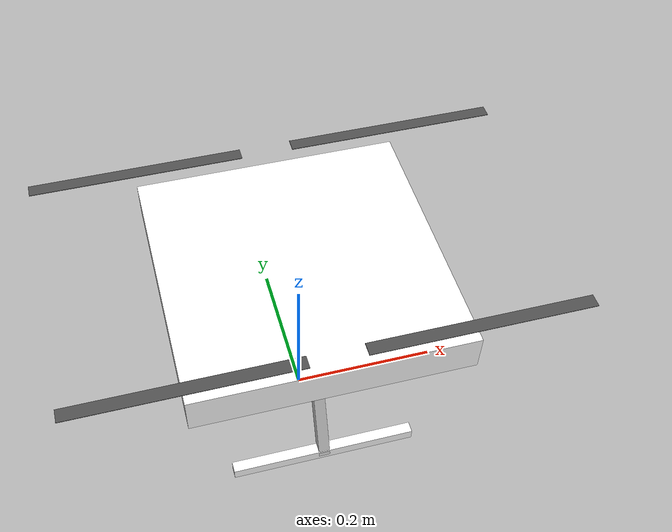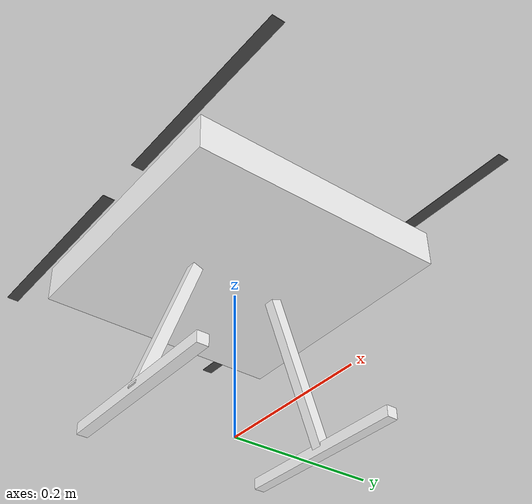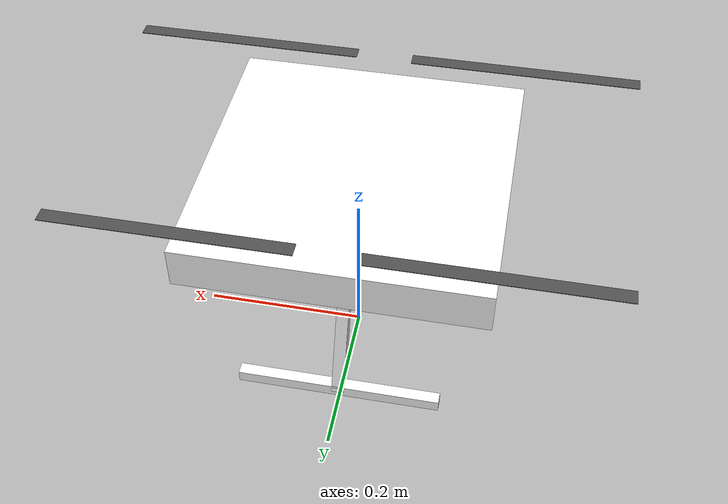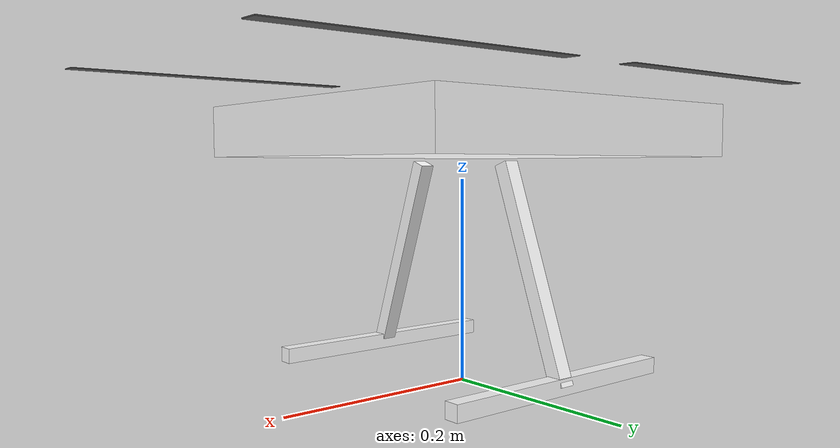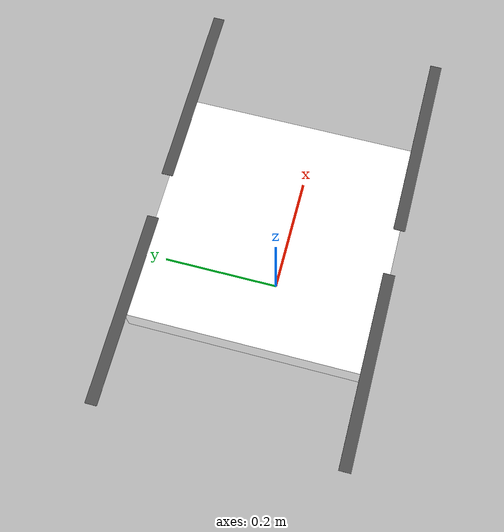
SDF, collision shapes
<?xml version="1.0" encoding="UTF-8"?>
<sdf version='1.9'>
  <model name='x500_depth'>
    <include merge='true'>
      <uri>x500</uri>
    </include>
    <include merge='true'>
      <uri>model://OakD-Lite</uri>
      <pose>0.06 0.03 0.242 0 1.57 0</pose>
    </include>
    <joint name="CameraJoint" type="fixed">
      <parent>base_link</parent>
      <child>OakD-Lite/base_link</child>
      <pose relative_to="base_link">0.00 0.03 0.242 0 1.57 0</pose>
    </joint>
  </model>
</sdf>

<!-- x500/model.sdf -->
<sdf version='1.9'>
  <model name='x500'>
    <include merge='true'>
      <uri>model://x500_base</uri>
    </include>
    <plugin filename="gz-sim-multicopter-motor-model-system" name="gz::sim::systems::MulticopterMotorModel">
      <jointName>rotor_0_joint</jointName>
      <linkName>rotor_0</linkName>
      <turningDirection>ccw</turningDirection>
      <timeConstantUp>0.0125</timeConstantUp>
      <timeConstantDown>0.025</timeConstantDown>
      <maxRotVelocity>1032.0</maxRotVelocity>
      <motorConstant>12.1166e-06</motorConstant>
      <momentConstant>0.0211</momentConstant>
      <commandSubTopic>command/motor_speed</commandSubTopic>
      <motorNumber>0</motorNumber>
      <rotorDragCoefficient>0.000175</rotorDragCoefficient>
      <rollingMomentCoefficient>1e-06</rollingMomentCoefficient>
      <rotorVelocitySlowdownSim>10</rotorVelocitySlowdownSim>
      <motorType>velocity</motorType>
    </plugin>
    <plugin filename="gz-sim-multicopter-motor-model-system" name="gz::sim::systems::MulticopterMotorModel">
      <jointName>rotor_1_joint</jointName>
      <linkName>rotor_1</linkName>
      <turningDirection>ccw</turningDirection>
      <timeConstantUp>0.0125</timeConstantUp>
      <timeConstantDown>0.025</timeConstantDown>
      <maxRotVelocity>1032.0</maxRotVelocity>
      <motorConstant>12.1166e-06</motorConstant>
      <momentConstant>0.0211</momentConstant>
      <commandSubTopic>command/motor_speed</commandSubTopic>
      <motorNumber>1</motorNumber>
      <rotorDragCoefficient>0.000175</rotorDragCoefficient>
      <rollingMomentCoefficient>1e-06</rollingMomentCoefficient>
      <rotorVelocitySlowdownSim>10</rotorVelocitySlowdownSim>
      <motorType>velocity</motorType>
    </plugin>
    <plugin filename="gz-sim-multicopter-motor-model-system" name="gz::sim::systems::MulticopterMotorModel">
      <jointName>rotor_2_joint</jointName>
      <linkName>rotor_2</linkName>
      <turningDirection>cw</turningDirection>
      <timeConstantUp>0.0125</timeConstantUp>
      <timeConstantDown>0.025</timeConstantDown>
      <maxRotVelocity>1000.0</maxRotVelocity>
      <motorConstant>12.1166e-06</motorConstant>
      <momentConstant>0.0211</momentConstant>
      <commandSubTopic>command/motor_speed</commandSubTopic>
      <motorNumber>2</motorNumber>
      <rotorDragCoefficient>0.000175</rotorDragCoefficient>
      <rollingMomentCoefficient>1e-06</rollingMomentCoefficient>
      <rotorVelocitySlowdownSim>10</rotorVelocitySlowdownSim>
      <motorType>velocity</motorType>
    </plugin>
    <plugin filename="gz-sim-multicopter-motor-model-system" name="gz::sim::systems::MulticopterMotorModel">
      <jointName>rotor_3_joint</jointName>
      <linkName>rotor_3</linkName>
      <turningDirection>cw</turningDirection>
      <timeConstantUp>0.0125</timeConstantUp>
      <timeConstantDown>0.025</timeConstantDown>
      <maxRotVelocity>1000.0</maxRotVelocity>
      <motorConstant>12.1166e-06</motorConstant>
      <momentConstant>0.0211</momentConstant>
      <commandSubTopic>command/motor_speed</commandSubTopic>
      <motorNumber>3</motorNumber>
      <rotorDragCoefficient>0.000175</rotorDragCoefficient>
      <rollingMomentCoefficient>1e-06</rollingMomentCoefficient>
      <rotorVelocitySlowdownSim>10</rotorVelocitySlowdownSim>
      <motorType>velocity</motorType>
    </plugin>
  </model>
</sdf>

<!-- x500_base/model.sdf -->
<sdf version='1.9'>
  <model name='x500_base'>
    <pose>0 0 .24 0 0 0</pose>
    <self_collide>false</self_collide>
    <static>false</static>
    <link name="base_link">
      <inertial>
        <mass>1.458</mass>
        <inertia>
          <ixx>0.0168192</ixx>
          <ixy>0</ixy>
          <ixz>0</ixz>
          <iyy>0.0168192</iyy>
          <iyz>0</iyz>
          <izz>0.0243072</izz>
        </inertia>
      </inertial>
      <gravity>true</gravity>
      <velocity_decay/>
      <visual name="base_link_visual">
        <pose>0 0 .025 0 0 3.141592654</pose>
        <geometry>
          <mesh>
            <scale>1 1 1</scale>
            <uri>model://x500_base/meshes/NXP-HGD-CF.dae</uri>
          </mesh>
        </geometry>
      </visual>
      <visual name="5010_motor_base_0">
        <pose>0.174 0.174 .032 0 0 -.45</pose>
        <geometry>
          <mesh>
            <scale>1 1 1</scale>
            <uri>model://x500_base/meshes/5010Base.dae</uri>
          </mesh>
        </geometry>
      </visual>
      <visual name="5010_motor_base_1">
        <pose>-0.174 0.174 .032 0 0 -.45</pose>
        <geometry>
          <mesh>
            <scale>1 1 1</scale>
            <uri>model://x500_base/meshes/5010Base.dae</uri>
          </mesh>
        </geometry>
      </visual>
      <visual name="5010_motor_base_2">
        <pose>0.174 -0.174 .032 0 0 -.45</pose>
        <geometry>
          <mesh>
            <scale>1 1 1</scale>
            <uri>model://x500_base/meshes/5010Base.dae</uri>
          </mesh>
        </geometry>
      </visual>
      <visual name="5010_motor_base_3">
        <pose>-0.174 -0.174 .032 0 0 -.45</pose>
        <geometry>
          <mesh>
            <scale>1 1 1</scale>
            <uri>model://x500_base/meshes/5010Base.dae</uri>
          </mesh>
        </geometry>
      </visual>
      <visual name="NXP_FMUK66_FRONT">
        <pose>0.047 .001 .043 1 0 1.57</pose>
        <cast_shadows>false</cast_shadows>
        <geometry>
          <plane>
            <normal>0 0 1</normal>
            <size>.013 .007</size>
          </plane>
        </geometry>
        <material>
          <diffuse>1.0 1.0 1.0</diffuse>
          <specular>1.0 1.0 1.0</specular>
          <pbr>
            <metal>
              <albedo_map>model://x500_base/materials/textures/nxp.png</albedo_map>
            </metal>
          </pbr>
        </material>
      </visual>
      <visual name="NXP_FMUK66_TOP">
        <pose>-0.023 0 .0515 0 0 -1.57</pose>
        <cast_shadows>false</cast_shadows>
        <geometry>
          <plane>
            <normal>0 0 1</normal>
            <size>.013 .007</size>
          </plane>
        </geometry>
        <material>
          <diffuse>1.0 1.0 1.0</diffuse>
          <specular>1.0 1.0 1.0</specular>
          <pbr>
            <metal>
              <albedo_map>model://x500_base/materials/textures/nxp.png</albedo_map>
            </metal>
          </pbr>
        </material>
      </visual>
      <visual name="RDDRONE_FMUK66_TOP">
        <pose>-.03 0 .0515 0 0 -1.57</pose>
        <cast_shadows>false</cast_shadows>
        <geometry>
          <plane>
            <normal>0 0 1</normal>
            <size>.032 .0034</size>
          </plane>
        </geometry>
        <material>
          <diffuse>1.0 1.0 1.0</diffuse>
          <specular>1.0 1.0 1.0</specular>
          <pbr>
            <metal>
              <albedo_map>model://x500_base/materials/textures/rd.png</albedo_map>
            </metal>
          </pbr>
        </material>
      </visual>
      <collision name="base_link_collision_0">
        <pose>0 0 .007 0 0 0</pose>
        <geometry>
          <box>
            <size>0.35355339059327373 0.35355339059327373 0.05</size>
          </box>
        </geometry>
        <surface>
          <contact>
            <ode>
              <min_depth>0.001</min_depth>
              <max_vel>0</max_vel>
            </ode>
          </contact>
          <friction>
            <ode/>
          </friction>
        </surface>
      </collision>
      <collision name="base_link_collision_1">
        <pose>0 -0.098 -.123 -0.35 0 0</pose>
        <geometry>
          <box>
            <size>0.015 0.015 0.21</size>
          </box>
        </geometry>
        <surface>
          <contact>
            <ode>
              <min_depth>0.001</min_depth>
              <max_vel>0</max_vel>
            </ode>
          </contact>
          <friction>
            <ode/>
          </friction>
        </surface>
      </collision>
      <collision name="base_link_collision_2">
        <pose>0 0.098 -.123 0.35 0 0</pose>
        <geometry>
          <box>
            <size>0.015 0.015 0.21</size>
          </box>
        </geometry>
        <surface>
          <contact>
            <ode>
              <min_depth>0.001</min_depth>
              <max_vel>0</max_vel>
            </ode>
          </contact>
          <friction>
            <ode/>
          </friction>
        </surface>
      </collision>
      <collision name="base_link_collision_3">
        <pose>0 -0.132 -.2195 0 0 0</pose>
        <geometry>
          <box>
            <size>0.25 0.015 0.015</size>
          </box>
        </geometry>
        <surface>
          <contact>
            <ode>
              <min_depth>0.001</min_depth>
              <max_vel>0</max_vel>
            </ode>
          </contact>
          <friction>
            <ode/>
          </friction>
        </surface>
      </collision>
      <collision name="base_link_collision_4">
        <pose>0 0.132 -.2195 0 0 0</pose>
        <geometry>
          <box>
            <size>0.25 0.015 0.015</size>
          </box>
        </geometry>
        <surface>
          <contact>
            <ode>
              <min_depth>0.001</min_depth>
              <max_vel>0</max_vel>
            </ode>
          </contact>
          <friction>
            <ode/>
          </friction>
        </surface>
      </collision>
      <sensor name="air_pressure_sensor" type="air_pressure">
        <always_on>1</always_on>
        <update_rate>50</update_rate>
        <air_pressure>
          <pressure>
            <noise type="gaussian">
              <mean>0</mean>
              <stddev>0.01</stddev>
            </noise>
          </pressure>
        </air_pressure>
      </sensor>
      <sensor name="imu_sensor" type="imu">
        <always_on>1</always_on>
        <update_rate>250</update_rate>
        <imu>
          <angular_velocity>
            <x>
              <noise type="gaussian">
                <mean>0</mean>
                <stddev>0.00018665</stddev>

              </noise>
            </x>
            <y>
              <noise type="gaussian">
                <mean>0</mean>
                <stddev>0.00018665</stddev>

              </noise>
            </y>
          </angular_velocity>
          <linear_acceleration>
            <x>
              <noise type="gaussian">
                <mean>0</mean>
                <stddev>0.00186</stddev>

              </noise>
            </x>
            <y>
              <noise type="gaussian">
                <mean>0</mean>
                <stddev>0.00186</stddev>

              </noise>
            </y>
          </linear_acceleration>
        </imu>
      </sensor>
      <sensor name="navsat_sensor" type="navsat">
        <always_on>1</always_on>
        <update_rate>30</update_rate>
      </sensor>
    </link>
    <link name="rotor_0">
      <gravity>true</gravity>
      <self_collide>false</self_collide>
      <velocity_decay/>
      <pose>0.174 -0.174 0.06 0 0 0</pose>
      <inertial>
          <mass>0.065</mass>
          <inertia>
            <ixx>3.8464910483993325e-07</ixx>
            <iyy>2.6115851691700804e-05</iyy>
            <izz>2.649858234714004e-05</izz>
          </inertia>
        </inertial>
      <visual name="rotor_0_visual">
        <pose>-0.022 -0.14638461538461536 -0.016 0 0 0</pose>
        <geometry>
          <mesh>
            <scale>0.8461538461538461 0.8461538461538461 0.8461538461538461</scale>
            <uri>model://x500_base/meshes/1345_prop_ccw.stl</uri>
          </mesh>
        </geometry>
        <material>
          <script>
            <name>Gazebo/DarkGrey</name>
            <uri>file://media/materials/scripts/gazebo.material</uri>
          </script>
        </material>
      </visual>
      <visual name="rotor_0_visual_motor_bell">
        <pose>0 0 -.032 0 0 0</pose>
        <geometry>
          <mesh>
            <scale>1 1 1</scale>
            <uri>model://x500_base/meshes/5010Bell.dae</uri>
          </mesh>
        </geometry>
      </visual>
      <collision name="rotor_0_collision">
        <pose>0 0 0 0 0 0 </pose>
        <geometry>
          <box>
            <size>0.2792307692307692 0.016923076923076923 0.0008461538461538462</size>
          </box>
        </geometry>
        <surface>
          <contact>
            <ode>
              <min_depth>0.001</min_depth>
              <max_vel>0</max_vel>
            </ode>
          </contact>
          <friction>
            <ode/>
          </friction>
        </surface>
      </collision>
    </link>
    <joint name="rotor_0_joint" type="revolute">
      <parent>base_link</parent>
      <child>rotor_0</child>
      <axis>
        <xyz>0 0 1</xyz>
        <limit>
          <lower>-1e+16</lower>
          <upper>1e+16</upper>
        </limit>
        <dynamics>
          <spring_reference>0</spring_reference>
          <spring_stiffness>0</spring_stiffness>
        </dynamics>
      </axis>
    </joint>
    <link name="rotor_1">
      <gravity>true</gravity>
      <self_collide>false</self_collide>
      <velocity_decay/>
      <pose>-0.174 0.174 0.06 0 0 0</pose>
      <inertial>
          <mass>0.065</mass>
          <inertia>
            <ixx>3.8464910483993325e-07</ixx>
            <iyy>2.6115851691700804e-05</iyy>
            <izz>2.649858234714004e-05</izz>
          </inertia>
        </inertial>
      <visual name="rotor_1_visual">
        <pose>-0.022 -0.14638461538461536 -0.016 0 0 0</pose>
        <geometry>
          <mesh>
            <scale>0.8461538461538461 0.8461538461538461 0.8461538461538461</scale>
            <uri>model://x500_base/meshes/1345_prop_ccw.stl</uri>
          </mesh>
        </geometry>
        <material>
          <script>
            <name>Gazebo/DarkGrey</name>
            <uri>file://media/materials/scripts/gazebo.material</uri>
          </script>
        </material>
      </visual>
      <visual name="rotor_1_visual_motor_top">
        <pose>0 0 -.032 0 0 0</pose>
        <geometry>
          <mesh>
            <scale>1 1 1</scale>
            <uri>model://x500_base/meshes/5010Bell.dae</uri>
          </mesh>
        </geometry>
      </visual>
      <collision name="rotor_1_collision">
        <pose>0 0 0 0 0 0 </pose>
        <geometry>
          <box>
            <size>0.2792307692307692 0.016923076923076923 0.0008461538461538462</size>
          </box>
        </geometry>
        <surface>
          <contact>
            <ode>
              <min_depth>0.001</min_depth>
              <max_vel>0</max_vel>
            </ode>
          </contact>
          <friction>
            <ode/>
          </friction>
        </surface>
      </collision>
    </link>
    <joint name="rotor_1_joint" type="revolute">
      <parent>base_link</parent>
      <child>rotor_1</child>
      <axis>
        <xyz>0 0 1</xyz>
        <limit>
          <lower>-1e+16</lower>
          <upper>1e+16</upper>
        </limit>
        <dynamics>
          <spring_reference>0</spring_reference>
          <spring_stiffness>0</spring_stiffness>
        </dynamics>
      </axis>
    </joint>
    <link name="rotor_2">
      <gravity>true</gravity>
      <self_collide>false</self_collide>
      <velocity_decay/>
      <pose>0.174 0.174 0.06 0 0 0</pose>
      <inertial>
          <mass>0.065</mass>
          <inertia>
            <ixx>3.8464910483993325e-07</ixx>
            <iyy>2.6115851691700804e-05</iyy>
            <izz>2.649858234714004e-05</izz>
          </inertia>
        </inertial>
      <visual name="rotor_2_visual">
        <pose>-0.022 -0.14638461538461536 -0.016 0 0 0</pose>
        <geometry>
          <mesh>
            <scale>0.8461538461538461 0.8461538461538461 0.8461538461538461</scale>
            <uri>model://x500_base/meshes/1345_prop_cw.stl</uri>
          </mesh>
        </geometry>
        <material>
          <script>
            <name>Gazebo/DarkGrey</name>
            <uri>file://media/materials/scripts/gazebo.material</uri>
          </script>
        </material>
      </visual>
      <visual name="rotor_2_visual_motor_top">
        <pose>0 0 -.032 0 0 0</pose>
        <geometry>
          <mesh>
            <scale>1 1 1</scale>
            <uri>model://x500_base/meshes/5010Bell.dae</uri>
          </mesh>
        </geometry>
      </visual>
      <collision name="rotor_2_collision">
        <pose>0 0 0 0 0 0 </pose>
        <geometry>
          <box>
            <size>0.2792307692307692 0.016923076923076923 0.0008461538461538462</size>
          </box>
        </geometry>
        <surface>
          <contact>
            <ode>
              <min_depth>0.001</min_depth>
              <max_vel>0</max_vel>
            </ode>
          </contact>
          <friction>
            <ode/>
          </friction>
        </surface>
      </collision>
    </link>
    <joint name="rotor_2_joint" type="revolute">
      <parent>base_link</parent>
      <child>rotor_2</child>
      <axis>
        <xyz>0 0 1</xyz>
        <limit>
          <lower>-1e+16</lower>
          <upper>1e+16</upper>
        </limit>
        <dynamics>
          <spring_reference>0</spring_reference>
          <spring_stiffness>0</spring_stiffness>
        </dynamics>
      </axis>
    </joint>
    <link name="rotor_3">
      <gravity>true</gravity>
      <self_collide>false</self_collide>
      <velocity_decay/>
      <pose>-0.174 -0.174 0.06 0 0 0</pose>
      <inertial>
          <mass>0.065</mass>
          <inertia>
            <ixx>3.8464910483993325e-07</ixx>
            <iyy>2.6115851691700804e-05</iyy>
            <izz>2.649858234714004e-05</izz>
          </inertia>
        </inertial>
      <visual name="rotor_3_visual">
        <pose>-0.022 -0.14638461538461536 -0.016 0 0 0</pose>
        <geometry>
          <mesh>
            <scale>0.8461538461538461 0.8461538461538461 0.8461538461538461</scale>
            <uri>model://x500_base/meshes/1345_prop_cw.stl</uri>
          </mesh>
        </geometry>
        <material>
          <script>
            <name>Gazebo/DarkGrey</name>
            <uri>file://media/materials/scripts/gazebo.material</uri>
          </script>
        </material>
      </visual>
      <visual name="rotor_3_visual_motor_top">
        <pose>0 0 -.032 0 0 0</pose>
        <geometry>
          <mesh>
            <scale>1 1 1</scale>
            <uri>model://x500_base/meshes/5010Bell.dae</uri>
          </mesh>
        </geometry>
      </visual>
      <collision name="rotor_3_collision">
        <pose>0 0 0 0 0 0 </pose>
        <geometry>
          <box>
            <size>0.2792307692307692 0.016923076923076923 0.0008461538461538462</size>
          </box>
        </geometry>
        <surface>
          <contact>
            <ode>
              <min_depth>0.001</min_depth>
              <max_vel>0</max_vel>
            </ode>
          </contact>
          <friction>
            <ode/>
          </friction>
        </surface>
      </collision>
    </link>
    <joint name="rotor_3_joint" type="revolute">
      <parent>base_link</parent>
      <child>rotor_3</child>
      <axis>
        <xyz>0 0 1</xyz>
        <limit>
          <lower>-1e+16</lower>
          <upper>1e+16</upper>
        </limit>
        <dynamics>
          <spring_reference>0</spring_reference>
          <spring_stiffness>0</spring_stiffness>
        </dynamics>
      </axis>
    </joint>
  </model>
</sdf>

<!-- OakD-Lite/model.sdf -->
<sdf version='1.9'>
  <model name='OakD-Lite'>
    <pose>0 0 0 0 0 0</pose>
    <self_collide>false</self_collide>
    <static>false</static>
    <link name="OakD-Lite/base_link">
      <inertial>
        <pose>0 0 0 0 0 0</pose>
        <mass>0.162</mass>
        <inertia>
          <ixx>0.0000460804</ixx>
          <ixy>0</ixy>
          <ixz>0</ixz>
          <iyy>0.0000055421</iyy>
          <iyz>0</iyz>
          <izz>0.0000436519</izz>
        </inertia>
      </inertial>
      <visual name="OakD-Lite/visual">
        <pose>0 0 0 0 0 0</pose>
        <geometry>
          <mesh>
            <scale>1 1 1</scale>
            <uri>model://OakD-Lite/meshes/OakDLite.dae</uri>
          </mesh>
        </geometry>
      </visual>
      <collision name="OakD-Lite/collision">
        <pose>0.0 -0.03 .014 0 0 0</pose>
        <geometry>
          <box>
            <size>0.0175 0.091 0.028</size>
          </box>
        </geometry>
      </collision>
      <sensor name="IMX214" type="camera">
        <pose>0 -0.03 0 0 0 0</pose>
        <camera>
          <horizontal_fov>0.9439860762623683</horizontal_fov>
          <image>
            <width>640</width>
            <height>480</height>
          </image>
          <clip>
            <near>0.1</near>
            <far>100</far>
          </clip>
        </camera>
        <always_on>1</always_on>
        <update_rate>10</update_rate>
        <visualize>true</visualize>
        <topic>camera</topic>
      </sensor>
      <gravity>true</gravity>
      <velocity_decay/>
    </link>
  </model>
</sdf>
